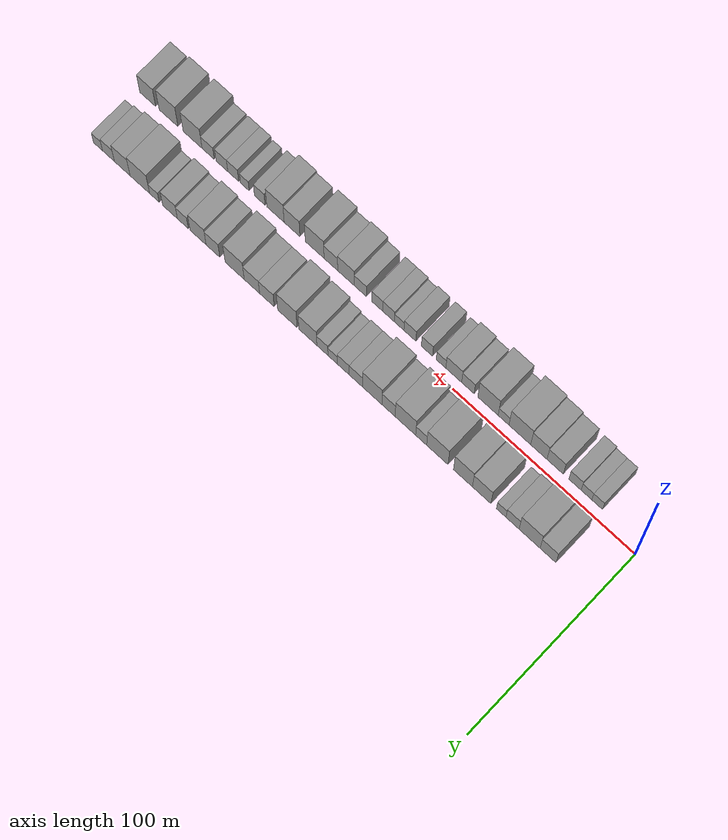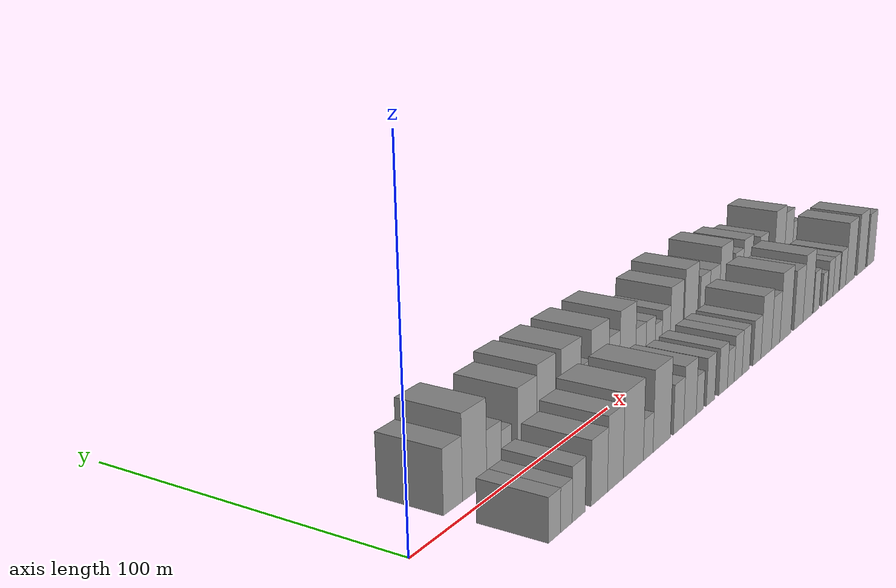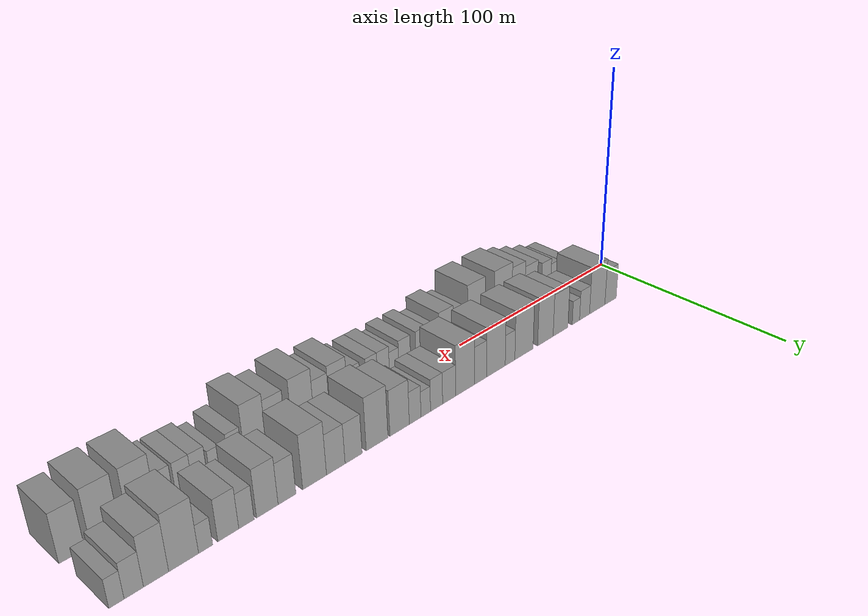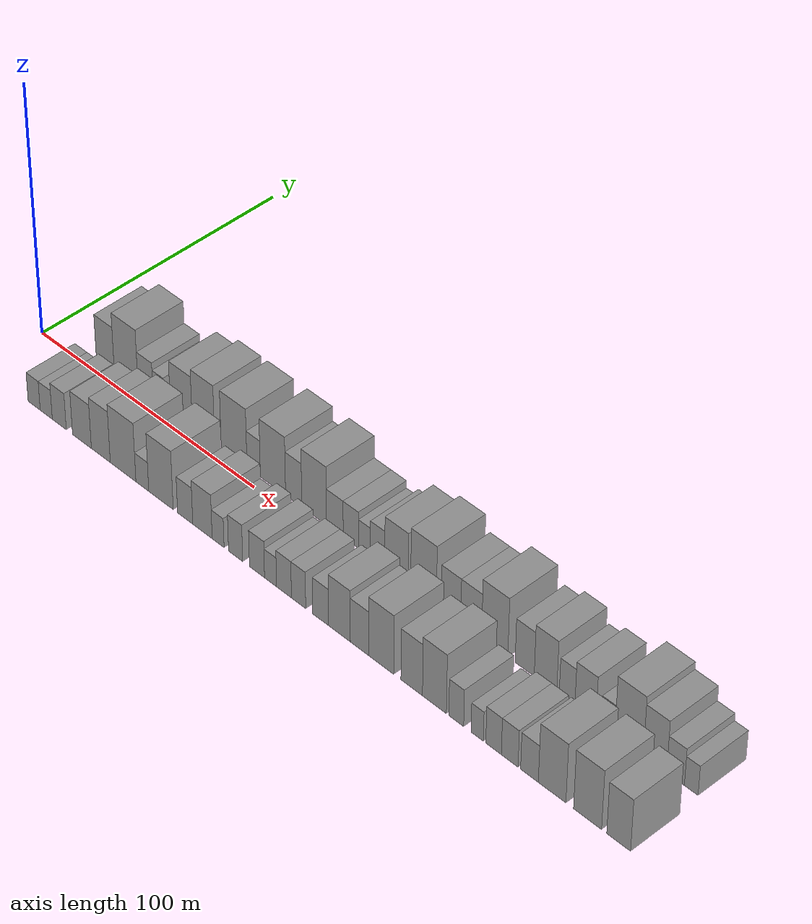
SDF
<sdf version="1.6">
 <world name="default">
  <scene>
   <sky><clouds><speed>12</speed></clouds></sky>
   <ambient>0.4 0.4 0.4 1</ambient>
   <background>0.7 0.7 0.7 1</background>
   <shadows>1</shadows>
  </scene>
  <gravity>0 0 -9.8066</gravity>
  <magnetic_field>6e-06 2.3e-05 -4.2e-05</magnetic_field>
  <physics default="0" name="default_physics" type="ode">
   <ode>
    <solver>
     <type>quick</type>
     <iters>10</iters>
     <sor>1.0</sor>
     <use_dynamic_moi_rescaling>0</use_dynamic_moi_rescaling>
    </solver>
    <constraints>
     <cfm>0</cfm>
     <erp>0.2</erp>
     <contact_max_correcting_vel>100</contact_max_correcting_vel>
     <contact_surface_layer>0.001</contact_surface_layer>
    </constraints>
   </ode>
   <max_step_size>0.004</max_step_size>
   <real_time_factor>1</real_time_factor>
   <real_time_update_rate>250</real_time_update_rate>
  </physics>
  <light name="sun" type="directional">
   <pose>0 0 10 0 0 0</pose>
   <diffuse>0.8 0.8 0.8 1</diffuse>
   <specular>0.2 0.2 0.2 1</specular>
   <attenuation>
    <range>1000</range>
    <constant>0.9</constant>
    <linear>0.01</linear>
    <quadratic>0.001</quadratic>
   </attenuation>
   <direction>-0.5 0.1 -0.9</direction>
  </light>
  <model name="building_1">
   <static>1</static>
   <pose>25.3235 14.5000 0 0.000000 0.000000 1.570796</pose>
   <link name="link">
    <pose>0 0 9.00 0 0 0</pose>
    <collision name="collision"><geometry><box><size>20.0000 8.6470 18.0000</size></box></geometry></collision>
    <visual name="visual">
     <cast_shadows>0</cast_shadows>
     <geometry><box><size>20.0000 8.6470 18.0000</size></box></geometry>
     <material>
      <script>
       <uri>model://grey_wall/materials/scripts</uri>
       <uri>model://grey_wall/materials/textures</uri>
       <name>vrc/grey_wall</name>
      </script>
     </material>
    </visual>
   </link>
  </model>
  <model name="building_2">
   <static>1</static>
   <pose>35.3446 14.5000 0 0.000000 0.000000 1.570796</pose>
   <link name="link">
    <pose>0 0 12.00 0 0 0</pose>
    <collision name="collision"><geometry><box><size>20.0000 11.3953 24.0000</size></box></geometry></collision>
    <visual name="visual">
     <cast_shadows>0</cast_shadows>
     <geometry><box><size>20.0000 11.3953 24.0000</size></box></geometry>
     <material>
      <script>
       <uri>model://grey_wall/materials/scripts</uri>
       <uri>model://grey_wall/materials/textures</uri>
       <name>vrc/grey_wall</name>
      </script>
     </material>
    </visual>
   </link>
  </model>
  <model name="building_3">
   <static>1</static>
   <pose>44.6455 14.5000 0 0.000000 0.000000 1.570796</pose>
   <link name="link">
    <pose>0 0 7.50 0 0 0</pose>
    <collision name="collision"><geometry><box><size>20.0000 7.2064 15.0000</size></box></geometry></collision>
    <visual name="visual">
     <cast_shadows>0</cast_shadows>
     <geometry><box><size>20.0000 7.2064 15.0000</size></box></geometry>
     <material>
      <script>
       <uri>model://grey_wall/materials/scripts</uri>
       <uri>model://grey_wall/materials/textures</uri>
       <name>vrc/grey_wall</name>
      </script>
     </material>
    </visual>
   </link>
  </model>
  <model name="building_4">
   <static>1</static>
   <pose>50.8558 14.5000 0 0.000000 0.000000 1.570796</pose>
   <link name="link">
    <pose>0 0 6.00 0 0 0</pose>
    <collision name="collision"><geometry><box><size>20.0000 5.2143 12.0000</size></box></geometry></collision>
    <visual name="visual">
     <cast_shadows>0</cast_shadows>
     <geometry><box><size>20.0000 5.2143 12.0000</size></box></geometry>
     <material>
      <script>
       <uri>model://grey_wall/materials/scripts</uri>
       <uri>model://grey_wall/materials/textures</uri>
       <name>vrc/grey_wall</name>
      </script>
     </material>
    </visual>
   </link>
  </model>
  <model name="building_5">
   <static>1</static>
   <pose>61.5639 14.5000 0 0.000000 0.000000 1.570796</pose>
   <link name="link">
    <pose>0 0 10.50 0 0 0</pose>
    <collision name="collision"><geometry><box><size>20.0000 10.2017 21.0000</size></box></geometry></collision>
    <visual name="visual">
     <cast_shadows>0</cast_shadows>
     <geometry><box><size>20.0000 10.2017 21.0000</size></box></geometry>
     <material>
      <script>
       <uri>model://grey_wall/materials/scripts</uri>
       <uri>model://grey_wall/materials/textures</uri>
       <name>vrc/grey_wall</name>
      </script>
     </material>
    </visual>
   </link>
  </model>
  <model name="building_6">
   <static>1</static>
   <pose>71.8635 14.5000 0 0.000000 0.000000 1.570796</pose>
   <link name="link">
    <pose>0 0 12.00 0 0 0</pose>
    <collision name="collision"><geometry><box><size>20.0000 10.3976 24.0000</size></box></geometry></collision>
    <visual name="visual">
     <cast_shadows>0</cast_shadows>
     <geometry><box><size>20.0000 10.3976 24.0000</size></box></geometry>
     <material>
      <script>
       <uri>model://grey_wall/materials/scripts</uri>
       <uri>model://grey_wall/materials/textures</uri>
       <name>vrc/grey_wall</name>
      </script>
     </material>
    </visual>
   </link>
  </model>
  <model name="building_7">
   <static>1</static>
   <pose>85.9538 14.5000 0 0.000000 0.000000 1.570796</pose>
   <link name="link">
    <pose>0 0 12.00 0 0 0</pose>
    <collision name="collision"><geometry><box><size>20.0000 11.7830 24.0000</size></box></geometry></collision>
    <visual name="visual">
     <cast_shadows>0</cast_shadows>
     <geometry><box><size>20.0000 11.7830 24.0000</size></box></geometry>
     <material>
      <script>
       <uri>model://grey_wall/materials/scripts</uri>
       <uri>model://grey_wall/materials/textures</uri>
       <name>vrc/grey_wall</name>
      </script>
     </material>
    </visual>
   </link>
  </model>
  <model name="building_8">
   <static>1</static>
   <pose>94.8876 14.5000 0 0.000000 0.000000 1.570796</pose>
   <link name="link">
    <pose>0 0 7.50 0 0 0</pose>
    <collision name="collision"><geometry><box><size>20.0000 6.0846 15.0000</size></box></geometry></collision>
    <visual name="visual">
     <cast_shadows>0</cast_shadows>
     <geometry><box><size>20.0000 6.0846 15.0000</size></box></geometry>
     <material>
      <script>
       <uri>model://grey_wall/materials/scripts</uri>
       <uri>model://grey_wall/materials/textures</uri>
       <name>vrc/grey_wall</name>
      </script>
     </material>
    </visual>
   </link>
  </model>
  <model name="building_9">
   <static>1</static>
   <pose>103.6214 14.5000 0 0.000000 0.000000 1.570796</pose>
   <link name="link">
    <pose>0 0 12.00 0 0 0</pose>
    <collision name="collision"><geometry><box><size>20.0000 11.3830 24.0000</size></box></geometry></collision>
    <visual name="visual">
     <cast_shadows>0</cast_shadows>
     <geometry><box><size>20.0000 11.3830 24.0000</size></box></geometry>
     <material>
      <script>
       <uri>model://grey_wall/materials/scripts</uri>
       <uri>model://grey_wall/materials/textures</uri>
       <name>vrc/grey_wall</name>
      </script>
     </material>
    </visual>
   </link>
  </model>
  <model name="building_10">
   <static>1</static>
   <pose>112.9402 14.5000 0 0.000000 0.000000 1.570796</pose>
   <link name="link">
    <pose>0 0 9.00 0 0 0</pose>
    <collision name="collision"><geometry><box><size>20.0000 7.2546 18.0000</size></box></geometry></collision>
    <visual name="visual">
     <cast_shadows>0</cast_shadows>
     <geometry><box><size>20.0000 7.2546 18.0000</size></box></geometry>
     <material>
      <script>
       <uri>model://grey_wall/materials/scripts</uri>
       <uri>model://grey_wall/materials/textures</uri>
       <name>vrc/grey_wall</name>
      </script>
     </material>
    </visual>
   </link>
  </model>
  <model name="building_11">
   <static>1</static>
   <pose>122.0571 14.5000 0 0.000000 0.000000 1.570796</pose>
   <link name="link">
    <pose>0 0 12.00 0 0 0</pose>
    <collision name="collision"><geometry><box><size>20.0000 10.9791 24.0000</size></box></geometry></collision>
    <visual name="visual">
     <cast_shadows>0</cast_shadows>
     <geometry><box><size>20.0000 10.9791 24.0000</size></box></geometry>
     <material>
      <script>
       <uri>model://grey_wall/materials/scripts</uri>
       <uri>model://grey_wall/materials/textures</uri>
       <name>vrc/grey_wall</name>
      </script>
     </material>
    </visual>
   </link>
  </model>
  <model name="building_12">
   <static>1</static>
   <pose>131.2327 14.5000 0 0.000000 0.000000 1.570796</pose>
   <link name="link">
    <pose>0 0 7.50 0 0 0</pose>
    <collision name="collision"><geometry><box><size>20.0000 7.3722 15.0000</size></box></geometry></collision>
    <visual name="visual">
     <cast_shadows>0</cast_shadows>
     <geometry><box><size>20.0000 7.3722 15.0000</size></box></geometry>
     <material>
      <script>
       <uri>model://grey_wall/materials/scripts</uri>
       <uri>model://grey_wall/materials/textures</uri>
       <name>vrc/grey_wall</name>
      </script>
     </material>
    </visual>
   </link>
  </model>
  <model name="building_13">
   <static>1</static>
   <pose>138.2727 14.5000 0 0.000000 0.000000 1.570796</pose>
   <link name="link">
    <pose>0 0 7.50 0 0 0</pose>
    <collision name="collision"><geometry><box><size>20.0000 6.7077 15.0000</size></box></geometry></collision>
    <visual name="visual">
     <cast_shadows>0</cast_shadows>
     <geometry><box><size>20.0000 6.7077 15.0000</size></box></geometry>
     <material>
      <script>
       <uri>model://grey_wall/materials/scripts</uri>
       <uri>model://grey_wall/materials/textures</uri>
       <name>vrc/grey_wall</name>
      </script>
     </material>
    </visual>
   </link>
  </model>
  <model name="building_14">
   <static>1</static>
   <pose>144.2247 14.5000 0 0.000000 0.000000 1.570796</pose>
   <link name="link">
    <pose>0 0 6.00 0 0 0</pose>
    <collision name="collision"><geometry><box><size>20.0000 5.1963 12.0000</size></box></geometry></collision>
    <visual name="visual">
     <cast_shadows>0</cast_shadows>
     <geometry><box><size>20.0000 5.1963 12.0000</size></box></geometry>
     <material>
      <script>
       <uri>model://grey_wall/materials/scripts</uri>
       <uri>model://grey_wall/materials/textures</uri>
       <name>vrc/grey_wall</name>
      </script>
     </material>
    </visual>
   </link>
  </model>
  <model name="building_15">
   <static>1</static>
   <pose>149.9397 14.5000 0 0.000000 0.000000 1.570796</pose>
   <link name="link">
    <pose>0 0 7.50 0 0 0</pose>
    <collision name="collision"><geometry><box><size>20.0000 6.2338 15.0000</size></box></geometry></collision>
    <visual name="visual">
     <cast_shadows>0</cast_shadows>
     <geometry><box><size>20.0000 6.2338 15.0000</size></box></geometry>
     <material>
      <script>
       <uri>model://grey_wall/materials/scripts</uri>
       <uri>model://grey_wall/materials/textures</uri>
       <name>vrc/grey_wall</name>
      </script>
     </material>
    </visual>
   </link>
  </model>
  <model name="building_16">
   <static>1</static>
   <pose>158.1114 14.5000 0 0.000000 0.000000 1.570796</pose>
   <link name="link">
    <pose>0 0 10.50 0 0 0</pose>
    <collision name="collision"><geometry><box><size>20.0000 10.1097 21.0000</size></box></geometry></collision>
    <visual name="visual">
     <cast_shadows>0</cast_shadows>
     <geometry><box><size>20.0000 10.1097 21.0000</size></box></geometry>
     <material>
      <script>
       <uri>model://grey_wall/materials/scripts</uri>
       <uri>model://grey_wall/materials/textures</uri>
       <name>vrc/grey_wall</name>
      </script>
     </material>
    </visual>
   </link>
  </model>
  <model name="building_17">
   <static>1</static>
   <pose>169.6307 14.5000 0 0.000000 0.000000 1.570796</pose>
   <link name="link">
    <pose>0 0 12.00 0 0 0</pose>
    <collision name="collision"><geometry><box><size>20.0000 10.9290 24.0000</size></box></geometry></collision>
    <visual name="visual">
     <cast_shadows>0</cast_shadows>
     <geometry><box><size>20.0000 10.9290 24.0000</size></box></geometry>
     <material>
      <script>
       <uri>model://grey_wall/materials/scripts</uri>
       <uri>model://grey_wall/materials/textures</uri>
       <name>vrc/grey_wall</name>
      </script>
     </material>
    </visual>
   </link>
  </model>
  <model name="building_18">
   <static>1</static>
   <pose>181.2219 14.5000 0 0.000000 0.000000 1.570796</pose>
   <link name="link">
    <pose>0 0 9.00 0 0 0</pose>
    <collision name="collision"><geometry><box><size>20.0000 8.2533 18.0000</size></box></geometry></collision>
    <visual name="visual">
     <cast_shadows>0</cast_shadows>
     <geometry><box><size>20.0000 8.2533 18.0000</size></box></geometry>
     <material>
      <script>
       <uri>model://grey_wall/materials/scripts</uri>
       <uri>model://grey_wall/materials/textures</uri>
       <name>vrc/grey_wall</name>
      </script>
     </material>
    </visual>
   </link>
  </model>
  <model name="building_19">
   <static>1</static>
   <pose>189.7160 14.5000 0 0.000000 0.000000 1.570796</pose>
   <link name="link">
    <pose>0 0 9.00 0 0 0</pose>
    <collision name="collision"><geometry><box><size>20.0000 8.7350 18.0000</size></box></geometry></collision>
    <visual name="visual">
     <cast_shadows>0</cast_shadows>
     <geometry><box><size>20.0000 8.7350 18.0000</size></box></geometry>
     <material>
      <script>
       <uri>model://grey_wall/materials/scripts</uri>
       <uri>model://grey_wall/materials/textures</uri>
       <name>vrc/grey_wall</name>
      </script>
     </material>
    </visual>
   </link>
  </model>
  <model name="building_20">
   <static>1</static>
   <pose>199.5120 14.5000 0 0.000000 0.000000 1.570796</pose>
   <link name="link">
    <pose>0 0 12.00 0 0 0</pose>
    <collision name="collision"><geometry><box><size>20.0000 10.8571 24.0000</size></box></geometry></collision>
    <visual name="visual">
     <cast_shadows>0</cast_shadows>
     <geometry><box><size>20.0000 10.8571 24.0000</size></box></geometry>
     <material>
      <script>
       <uri>model://grey_wall/materials/scripts</uri>
       <uri>model://grey_wall/materials/textures</uri>
       <name>vrc/grey_wall</name>
      </script>
     </material>
    </visual>
   </link>
  </model>
  <model name="building_21">
   <static>1</static>
   <pose>211.8389 14.5000 0 0.000000 0.000000 1.570796</pose>
   <link name="link">
    <pose>0 0 9.00 0 0 0</pose>
    <collision name="collision"><geometry><box><size>20.0000 7.7967 18.0000</size></box></geometry></collision>
    <visual name="visual">
     <cast_shadows>0</cast_shadows>
     <geometry><box><size>20.0000 7.7967 18.0000</size></box></geometry>
     <material>
      <script>
       <uri>model://grey_wall/materials/scripts</uri>
       <uri>model://grey_wall/materials/textures</uri>
       <name>vrc/grey_wall</name>
      </script>
     </material>
    </visual>
   </link>
  </model>
  <model name="building_22">
   <static>1</static>
   <pose>220.3157 14.5000 0 0.000000 0.000000 1.570796</pose>
   <link name="link">
    <pose>0 0 10.50 0 0 0</pose>
    <collision name="collision"><geometry><box><size>20.0000 9.1568 21.0000</size></box></geometry></collision>
    <visual name="visual">
     <cast_shadows>0</cast_shadows>
     <geometry><box><size>20.0000 9.1568 21.0000</size></box></geometry>
     <material>
      <script>
       <uri>model://grey_wall/materials/scripts</uri>
       <uri>model://grey_wall/materials/textures</uri>
       <name>vrc/grey_wall</name>
      </script>
     </material>
    </visual>
   </link>
  </model>
  <model name="building_23">
   <static>1</static>
   <pose>229.0466 14.5000 0 0.000000 0.000000 1.570796</pose>
   <link name="link">
    <pose>0 0 7.50 0 0 0</pose>
    <collision name="collision"><geometry><box><size>20.0000 6.3051 15.0000</size></box></geometry></collision>
    <visual name="visual">
     <cast_shadows>0</cast_shadows>
     <geometry><box><size>20.0000 6.3051 15.0000</size></box></geometry>
     <material>
      <script>
       <uri>model://grey_wall/materials/scripts</uri>
       <uri>model://grey_wall/materials/textures</uri>
       <name>vrc/grey_wall</name>
      </script>
     </material>
    </visual>
   </link>
  </model>
  <model name="building_24">
   <static>1</static>
   <pose>236.4093 14.5000 0 0.000000 0.000000 1.570796</pose>
   <link name="link">
    <pose>0 0 9.00 0 0 0</pose>
    <collision name="collision"><geometry><box><size>20.0000 8.4203 18.0000</size></box></geometry></collision>
    <visual name="visual">
     <cast_shadows>0</cast_shadows>
     <geometry><box><size>20.0000 8.4203 18.0000</size></box></geometry>
     <material>
      <script>
       <uri>model://grey_wall/materials/scripts</uri>
       <uri>model://grey_wall/materials/textures</uri>
       <name>vrc/grey_wall</name>
      </script>
     </material>
    </visual>
   </link>
  </model>
  <model name="building_25">
   <static>1</static>
   <pose>245.3656 14.5000 0 0.000000 0.000000 1.570796</pose>
   <link name="link">
    <pose>0 0 6.00 0 0 0</pose>
    <collision name="collision"><geometry><box><size>20.0000 5.4925 12.0000</size></box></geometry></collision>
    <visual name="visual">
     <cast_shadows>0</cast_shadows>
     <geometry><box><size>20.0000 5.4925 12.0000</size></box></geometry>
     <material>
      <script>
       <uri>model://grey_wall/materials/scripts</uri>
       <uri>model://grey_wall/materials/textures</uri>
       <name>vrc/grey_wall</name>
      </script>
     </material>
    </visual>
   </link>
  </model>
  <model name="building_26">
   <static>1</static>
   <pose>253.7305 14.5000 0 0.000000 0.000000 1.570796</pose>
   <link name="link">
    <pose>0 0 12.00 0 0 0</pose>
    <collision name="collision"><geometry><box><size>20.0000 11.2373 24.0000</size></box></geometry></collision>
    <visual name="visual">
     <cast_shadows>0</cast_shadows>
     <geometry><box><size>20.0000 11.2373 24.0000</size></box></geometry>
     <material>
      <script>
       <uri>model://grey_wall/materials/scripts</uri>
       <uri>model://grey_wall/materials/textures</uri>
       <name>vrc/grey_wall</name>
      </script>
     </material>
    </visual>
   </link>
  </model>
  <model name="building_27">
   <static>1</static>
   <pose>263.9047 14.5000 0 0.000000 0.000000 1.570796</pose>
   <link name="link">
    <pose>0 0 10.50 0 0 0</pose>
    <collision name="collision"><geometry><box><size>20.0000 9.1110 21.0000</size></box></geometry></collision>
    <visual name="visual">
     <cast_shadows>0</cast_shadows>
     <geometry><box><size>20.0000 9.1110 21.0000</size></box></geometry>
     <material>
      <script>
       <uri>model://grey_wall/materials/scripts</uri>
       <uri>model://grey_wall/materials/textures</uri>
       <name>vrc/grey_wall</name>
      </script>
     </material>
    </visual>
   </link>
  </model>
  <model name="building_28">
   <static>1</static>
   <pose>271.8856 14.5000 0 0.000000 0.000000 1.570796</pose>
   <link name="link">
    <pose>0 0 7.50 0 0 0</pose>
    <collision name="collision"><geometry><box><size>20.0000 6.8509 15.0000</size></box></geometry></collision>
    <visual name="visual">
     <cast_shadows>0</cast_shadows>
     <geometry><box><size>20.0000 6.8509 15.0000</size></box></geometry>
     <material>
      <script>
       <uri>model://grey_wall/materials/scripts</uri>
       <uri>model://grey_wall/materials/textures</uri>
       <name>vrc/grey_wall</name>
      </script>
     </material>
    </visual>
   </link>
  </model>
  <model name="building_29">
   <static>1</static>
   <pose>277.9489 14.5000 0 0.000000 0.000000 1.570796</pose>
   <link name="link">
    <pose>0 0 6.00 0 0 0</pose>
    <collision name="collision"><geometry><box><size>20.0000 5.2755 12.0000</size></box></geometry></collision>
    <visual name="visual">
     <cast_shadows>0</cast_shadows>
     <geometry><box><size>20.0000 5.2755 12.0000</size></box></geometry>
     <material>
      <script>
       <uri>model://grey_wall/materials/scripts</uri>
       <uri>model://grey_wall/materials/textures</uri>
       <name>vrc/grey_wall</name>
      </script>
     </material>
    </visual>
   </link>
  </model>
  <model name="building_30">
   <static>1</static>
   <pose>24.9057 -14.5000 0 0.000000 0.000000 1.570796</pose>
   <link name="link">
    <pose>0 0 6.00 0 0 0</pose>
    <collision name="collision"><geometry><box><size>20.0000 5.8114 12.0000</size></box></geometry></collision>
    <visual name="visual">
     <cast_shadows>0</cast_shadows>
     <geometry><box><size>20.0000 5.8114 12.0000</size></box></geometry>
     <material>
      <script>
       <uri>model://grey_wall/materials/scripts</uri>
       <uri>model://grey_wall/materials/textures</uri>
       <name>vrc/grey_wall</name>
      </script>
     </material>
    </visual>
   </link>
  </model>
  <model name="building_31">
   <static>1</static>
   <pose>30.7240 -14.5000 0 0.000000 0.000000 1.570796</pose>
   <link name="link">
    <pose>0 0 6.00 0 0 0</pose>
    <collision name="collision"><geometry><box><size>20.0000 5.8250 12.0000</size></box></geometry></collision>
    <visual name="visual">
     <cast_shadows>0</cast_shadows>
     <geometry><box><size>20.0000 5.8250 12.0000</size></box></geometry>
     <material>
      <script>
       <uri>model://grey_wall/materials/scripts</uri>
       <uri>model://grey_wall/materials/textures</uri>
       <name>vrc/grey_wall</name>
      </script>
     </material>
    </visual>
   </link>
  </model>
  <model name="building_32">
   <static>1</static>
   <pose>36.9973 -14.5000 0 0.000000 0.000000 1.570796</pose>
   <link name="link">
    <pose>0 0 7.50 0 0 0</pose>
    <collision name="collision"><geometry><box><size>20.0000 6.7216 15.0000</size></box></geometry></collision>
    <visual name="visual">
     <cast_shadows>0</cast_shadows>
     <geometry><box><size>20.0000 6.7216 15.0000</size></box></geometry>
     <material>
      <script>
       <uri>model://grey_wall/materials/scripts</uri>
       <uri>model://grey_wall/materials/textures</uri>
       <name>vrc/grey_wall</name>
      </script>
     </material>
    </visual>
   </link>
  </model>
  <model name="building_33">
   <static>1</static>
   <pose>47.8279 -14.5000 0 0.000000 0.000000 1.570796</pose>
   <link name="link">
    <pose>0 0 9.00 0 0 0</pose>
    <collision name="collision"><geometry><box><size>20.0000 8.9396 18.0000</size></box></geometry></collision>
    <visual name="visual">
     <cast_shadows>0</cast_shadows>
     <geometry><box><size>20.0000 8.9396 18.0000</size></box></geometry>
     <material>
      <script>
       <uri>model://grey_wall/materials/scripts</uri>
       <uri>model://grey_wall/materials/textures</uri>
       <name>vrc/grey_wall</name>
      </script>
     </material>
    </visual>
   </link>
  </model>
  <model name="building_34">
   <static>1</static>
   <pose>56.7555 -14.5000 0 0.000000 0.000000 1.570796</pose>
   <link name="link">
    <pose>0 0 10.50 0 0 0</pose>
    <collision name="collision"><geometry><box><size>20.0000 8.9155 21.0000</size></box></geometry></collision>
    <visual name="visual">
     <cast_shadows>0</cast_shadows>
     <geometry><box><size>20.0000 8.9155 21.0000</size></box></geometry>
     <material>
      <script>
       <uri>model://grey_wall/materials/scripts</uri>
       <uri>model://grey_wall/materials/textures</uri>
       <name>vrc/grey_wall</name>
      </script>
     </material>
    </visual>
   </link>
  </model>
  <model name="building_35">
   <static>1</static>
   <pose>67.2008 -14.5000 0 0.000000 0.000000 1.570796</pose>
   <link name="link">
    <pose>0 0 12.00 0 0 0</pose>
    <collision name="collision"><geometry><box><size>20.0000 11.9750 24.0000</size></box></geometry></collision>
    <visual name="visual">
     <cast_shadows>0</cast_shadows>
     <geometry><box><size>20.0000 11.9750 24.0000</size></box></geometry>
     <material>
      <script>
       <uri>model://grey_wall/materials/scripts</uri>
       <uri>model://grey_wall/materials/textures</uri>
       <name>vrc/grey_wall</name>
      </script>
     </material>
    </visual>
   </link>
  </model>
  <model name="building_36">
   <static>1</static>
   <pose>76.1586 -14.5000 0 0.000000 0.000000 1.570796</pose>
   <link name="link">
    <pose>0 0 6.00 0 0 0</pose>
    <collision name="collision"><geometry><box><size>20.0000 5.9405 12.0000</size></box></geometry></collision>
    <visual name="visual">
     <cast_shadows>0</cast_shadows>
     <geometry><box><size>20.0000 5.9405 12.0000</size></box></geometry>
     <material>
      <script>
       <uri>model://grey_wall/materials/scripts</uri>
       <uri>model://grey_wall/materials/textures</uri>
       <name>vrc/grey_wall</name>
      </script>
     </material>
    </visual>
   </link>
  </model>
  <model name="building_37">
   <static>1</static>
   <pose>84.7532 -14.5000 0 0.000000 0.000000 1.570796</pose>
   <link name="link">
    <pose>0 0 12.00 0 0 0</pose>
    <collision name="collision"><geometry><box><size>20.0000 11.2487 24.0000</size></box></geometry></collision>
    <visual name="visual">
     <cast_shadows>0</cast_shadows>
     <geometry><box><size>20.0000 11.2487 24.0000</size></box></geometry>
     <material>
      <script>
       <uri>model://grey_wall/materials/scripts</uri>
       <uri>model://grey_wall/materials/textures</uri>
       <name>vrc/grey_wall</name>
      </script>
     </material>
    </visual>
   </link>
  </model>
  <model name="building_38">
   <static>1</static>
   <pose>95.8421 -14.5000 0 0.000000 0.000000 1.570796</pose>
   <link name="link">
    <pose>0 0 7.50 0 0 0</pose>
    <collision name="collision"><geometry><box><size>20.0000 6.9291 15.0000</size></box></geometry></collision>
    <visual name="visual">
     <cast_shadows>0</cast_shadows>
     <geometry><box><size>20.0000 6.9291 15.0000</size></box></geometry>
     <material>
      <script>
       <uri>model://grey_wall/materials/scripts</uri>
       <uri>model://grey_wall/materials/textures</uri>
       <name>vrc/grey_wall</name>
      </script>
     </material>
    </visual>
   </link>
  </model>
  <model name="building_39">
   <static>1</static>
   <pose>103.6847 -14.5000 0 0.000000 0.000000 1.570796</pose>
   <link name="link">
    <pose>0 0 9.00 0 0 0</pose>
    <collision name="collision"><geometry><box><size>20.0000 8.7561 18.0000</size></box></geometry></collision>
    <visual name="visual">
     <cast_shadows>0</cast_shadows>
     <geometry><box><size>20.0000 8.7561 18.0000</size></box></geometry>
     <material>
      <script>
       <uri>model://grey_wall/materials/scripts</uri>
       <uri>model://grey_wall/materials/textures</uri>
       <name>vrc/grey_wall</name>
      </script>
     </material>
    </visual>
   </link>
  </model>
  <model name="building_40">
   <static>1</static>
   <pose>110.7421 -14.5000 0 0.000000 0.000000 1.570796</pose>
   <link name="link">
    <pose>0 0 6.00 0 0 0</pose>
    <collision name="collision"><geometry><box><size>20.0000 5.3586 12.0000</size></box></geometry></collision>
    <visual name="visual">
     <cast_shadows>0</cast_shadows>
     <geometry><box><size>20.0000 5.3586 12.0000</size></box></geometry>
     <material>
      <script>
       <uri>model://grey_wall/materials/scripts</uri>
       <uri>model://grey_wall/materials/textures</uri>
       <name>vrc/grey_wall</name>
      </script>
     </material>
    </visual>
   </link>
  </model>
  <model name="building_41">
   <static>1</static>
   <pose>118.5810 -14.5000 0 0.000000 0.000000 1.570796</pose>
   <link name="link">
    <pose>0 0 7.50 0 0 0</pose>
    <collision name="collision"><geometry><box><size>20.0000 6.3191 15.0000</size></box></geometry></collision>
    <visual name="visual">
     <cast_shadows>0</cast_shadows>
     <geometry><box><size>20.0000 6.3191 15.0000</size></box></geometry>
     <material>
      <script>
       <uri>model://grey_wall/materials/scripts</uri>
       <uri>model://grey_wall/materials/textures</uri>
       <name>vrc/grey_wall</name>
      </script>
     </material>
    </visual>
   </link>
  </model>
  <model name="building_42">
   <static>1</static>
   <pose>128.0762 -14.5000 0 0.000000 0.000000 1.570796</pose>
   <link name="link">
    <pose>0 0 7.50 0 0 0</pose>
    <collision name="collision"><geometry><box><size>20.0000 6.6713 15.0000</size></box></geometry></collision>
    <visual name="visual">
     <cast_shadows>0</cast_shadows>
     <geometry><box><size>20.0000 6.6713 15.0000</size></box></geometry>
     <material>
      <script>
       <uri>model://grey_wall/materials/scripts</uri>
       <uri>model://grey_wall/materials/textures</uri>
       <name>vrc/grey_wall</name>
      </script>
     </material>
    </visual>
   </link>
  </model>
  <model name="building_43">
   <static>1</static>
   <pose>134.0583 -14.5000 0 0.000000 0.000000 1.570796</pose>
   <link name="link">
    <pose>0 0 6.00 0 0 0</pose>
    <collision name="collision"><geometry><box><size>20.0000 5.2930 12.0000</size></box></geometry></collision>
    <visual name="visual">
     <cast_shadows>0</cast_shadows>
     <geometry><box><size>20.0000 5.2930 12.0000</size></box></geometry>
     <material>
      <script>
       <uri>model://grey_wall/materials/scripts</uri>
       <uri>model://grey_wall/materials/textures</uri>
       <name>vrc/grey_wall</name>
      </script>
     </material>
    </visual>
   </link>
  </model>
  <model name="building_44">
   <static>1</static>
   <pose>139.9572 -14.5000 0 0.000000 0.000000 1.570796</pose>
   <link name="link">
    <pose>0 0 7.50 0 0 0</pose>
    <collision name="collision"><geometry><box><size>20.0000 6.5048 15.0000</size></box></geometry></collision>
    <visual name="visual">
     <cast_shadows>0</cast_shadows>
     <geometry><box><size>20.0000 6.5048 15.0000</size></box></geometry>
     <material>
      <script>
       <uri>model://grey_wall/materials/scripts</uri>
       <uri>model://grey_wall/materials/textures</uri>
       <name>vrc/grey_wall</name>
      </script>
     </material>
    </visual>
   </link>
  </model>
  <model name="building_45">
   <static>1</static>
   <pose>146.3223 -14.5000 0 0.000000 0.000000 1.570796</pose>
   <link name="link">
    <pose>0 0 7.50 0 0 0</pose>
    <collision name="collision"><geometry><box><size>20.0000 6.2253 15.0000</size></box></geometry></collision>
    <visual name="visual">
     <cast_shadows>0</cast_shadows>
     <geometry><box><size>20.0000 6.2253 15.0000</size></box></geometry>
     <material>
      <script>
       <uri>model://grey_wall/materials/scripts</uri>
       <uri>model://grey_wall/materials/textures</uri>
       <name>vrc/grey_wall</name>
      </script>
     </material>
    </visual>
   </link>
  </model>
  <model name="building_46">
   <static>1</static>
   <pose>155.8530 -14.5000 0 0.000000 0.000000 1.570796</pose>
   <link name="link">
    <pose>0 0 7.50 0 0 0</pose>
    <collision name="collision"><geometry><box><size>20.0000 6.8361 15.0000</size></box></geometry></collision>
    <visual name="visual">
     <cast_shadows>0</cast_shadows>
     <geometry><box><size>20.0000 6.8361 15.0000</size></box></geometry>
     <material>
      <script>
       <uri>model://grey_wall/materials/scripts</uri>
       <uri>model://grey_wall/materials/textures</uri>
       <name>vrc/grey_wall</name>
      </script>
     </material>
    </visual>
   </link>
  </model>
  <model name="building_47">
   <static>1</static>
   <pose>163.9520 -14.5000 0 0.000000 0.000000 1.570796</pose>
   <link name="link">
    <pose>0 0 10.50 0 0 0</pose>
    <collision name="collision"><geometry><box><size>20.0000 9.3619 21.0000</size></box></geometry></collision>
    <visual name="visual">
     <cast_shadows>0</cast_shadows>
     <geometry><box><size>20.0000 9.3619 21.0000</size></box></geometry>
     <material>
      <script>
       <uri>model://grey_wall/materials/scripts</uri>
       <uri>model://grey_wall/materials/textures</uri>
       <name>vrc/grey_wall</name>
      </script>
     </material>
    </visual>
   </link>
  </model>
  <model name="building_48">
   <static>1</static>
   <pose>172.4879 -14.5000 0 0.000000 0.000000 1.570796</pose>
   <link name="link">
    <pose>0 0 9.00 0 0 0</pose>
    <collision name="collision"><geometry><box><size>20.0000 7.7100 18.0000</size></box></geometry></collision>
    <visual name="visual">
     <cast_shadows>0</cast_shadows>
     <geometry><box><size>20.0000 7.7100 18.0000</size></box></geometry>
     <material>
      <script>
       <uri>model://grey_wall/materials/scripts</uri>
       <uri>model://grey_wall/materials/textures</uri>
       <name>vrc/grey_wall</name>
      </script>
     </material>
    </visual>
   </link>
  </model>
  <model name="building_49">
   <static>1</static>
   <pose>181.6602 -14.5000 0 0.000000 0.000000 1.570796</pose>
   <link name="link">
    <pose>0 0 12.00 0 0 0</pose>
    <collision name="collision"><geometry><box><size>20.0000 10.6346 24.0000</size></box></geometry></collision>
    <visual name="visual">
     <cast_shadows>0</cast_shadows>
     <geometry><box><size>20.0000 10.6346 24.0000</size></box></geometry>
     <material>
      <script>
       <uri>model://grey_wall/materials/scripts</uri>
       <uri>model://grey_wall/materials/textures</uri>
       <name>vrc/grey_wall</name>
      </script>
     </material>
    </visual>
   </link>
  </model>
  <model name="building_50">
   <static>1</static>
   <pose>194.4681 -14.5000 0 0.000000 0.000000 1.570796</pose>
   <link name="link">
    <pose>0 0 10.50 0 0 0</pose>
    <collision name="collision"><geometry><box><size>20.0000 8.9810 21.0000</size></box></geometry></collision>
    <visual name="visual">
     <cast_shadows>0</cast_shadows>
     <geometry><box><size>20.0000 8.9810 21.0000</size></box></geometry>
     <material>
      <script>
       <uri>model://grey_wall/materials/scripts</uri>
       <uri>model://grey_wall/materials/textures</uri>
       <name>vrc/grey_wall</name>
      </script>
     </material>
    </visual>
   </link>
  </model>
  <model name="building_51">
   <static>1</static>
   <pose>203.8892 -14.5000 0 0.000000 0.000000 1.570796</pose>
   <link name="link">
    <pose>0 0 12.00 0 0 0</pose>
    <collision name="collision"><geometry><box><size>20.0000 9.8612 24.0000</size></box></geometry></collision>
    <visual name="visual">
     <cast_shadows>0</cast_shadows>
     <geometry><box><size>20.0000 9.8612 24.0000</size></box></geometry>
     <material>
      <script>
       <uri>model://grey_wall/materials/scripts</uri>
       <uri>model://grey_wall/materials/textures</uri>
       <name>vrc/grey_wall</name>
      </script>
     </material>
    </visual>
   </link>
  </model>
  <model name="building_52">
   <static>1</static>
   <pose>212.8627 -14.5000 0 0.000000 0.000000 1.570796</pose>
   <link name="link">
    <pose>0 0 7.50 0 0 0</pose>
    <collision name="collision"><geometry><box><size>20.0000 6.0858 15.0000</size></box></geometry></collision>
    <visual name="visual">
     <cast_shadows>0</cast_shadows>
     <geometry><box><size>20.0000 6.0858 15.0000</size></box></geometry>
     <material>
      <script>
       <uri>model://grey_wall/materials/scripts</uri>
       <uri>model://grey_wall/materials/textures</uri>
       <name>vrc/grey_wall</name>
      </script>
     </material>
    </visual>
   </link>
  </model>
  <model name="building_53">
   <static>1</static>
   <pose>221.3942 -14.5000 0 0.000000 0.000000 1.570796</pose>
   <link name="link">
    <pose>0 0 6.00 0 0 0</pose>
    <collision name="collision"><geometry><box><size>20.0000 4.9773 12.0000</size></box></geometry></collision>
    <visual name="visual">
     <cast_shadows>0</cast_shadows>
     <geometry><box><size>20.0000 4.9773 12.0000</size></box></geometry>
     <material>
      <script>
       <uri>model://grey_wall/materials/scripts</uri>
       <uri>model://grey_wall/materials/textures</uri>
       <name>vrc/grey_wall</name>
      </script>
     </material>
    </visual>
   </link>
  </model>
  <model name="building_54">
   <static>1</static>
   <pose>228.0225 -14.5000 0 0.000000 0.000000 1.570796</pose>
   <link name="link">
    <pose>0 0 7.50 0 0 0</pose>
    <collision name="collision"><geometry><box><size>20.0000 6.2794 15.0000</size></box></geometry></collision>
    <visual name="visual">
     <cast_shadows>0</cast_shadows>
     <geometry><box><size>20.0000 6.2794 15.0000</size></box></geometry>
     <material>
      <script>
       <uri>model://grey_wall/materials/scripts</uri>
       <uri>model://grey_wall/materials/textures</uri>
       <name>vrc/grey_wall</name>
      </script>
     </material>
    </visual>
   </link>
  </model>
  <model name="building_55">
   <static>1</static>
   <pose>234.5255 -14.5000 0 0.000000 0.000000 1.570796</pose>
   <link name="link">
    <pose>0 0 7.50 0 0 0</pose>
    <collision name="collision"><geometry><box><size>20.0000 6.7266 15.0000</size></box></geometry></collision>
    <visual name="visual">
     <cast_shadows>0</cast_shadows>
     <geometry><box><size>20.0000 6.7266 15.0000</size></box></geometry>
     <material>
      <script>
       <uri>model://grey_wall/materials/scripts</uri>
       <uri>model://grey_wall/materials/textures</uri>
       <name>vrc/grey_wall</name>
      </script>
     </material>
    </visual>
   </link>
  </model>
  <model name="building_56">
   <static>1</static>
   <pose>242.4114 -14.5000 0 0.000000 0.000000 1.570796</pose>
   <link name="link">
    <pose>0 0 7.50 0 0 0</pose>
    <collision name="collision"><geometry><box><size>20.0000 7.0451 15.0000</size></box></geometry></collision>
    <visual name="visual">
     <cast_shadows>0</cast_shadows>
     <geometry><box><size>20.0000 7.0451 15.0000</size></box></geometry>
     <material>
      <script>
       <uri>model://grey_wall/materials/scripts</uri>
       <uri>model://grey_wall/materials/textures</uri>
       <name>vrc/grey_wall</name>
      </script>
     </material>
    </visual>
   </link>
  </model>
  <model name="building_57">
   <static>1</static>
   <pose>251.3777 -14.5000 0 0.000000 0.000000 1.570796</pose>
   <link name="link">
    <pose>0 0 12.00 0 0 0</pose>
    <collision name="collision"><geometry><box><size>20.0000 10.8875 24.0000</size></box></geometry></collision>
    <visual name="visual">
     <cast_shadows>0</cast_shadows>
     <geometry><box><size>20.0000 10.8875 24.0000</size></box></geometry>
     <material>
      <script>
       <uri>model://grey_wall/materials/scripts</uri>
       <uri>model://grey_wall/materials/textures</uri>
       <name>vrc/grey_wall</name>
      </script>
     </material>
    </visual>
   </link>
  </model>
  <model name="building_58">
   <static>1</static>
   <pose>265.2764 -14.5000 0 0.000000 0.000000 1.570796</pose>
   <link name="link">
    <pose>0 0 12.00 0 0 0</pose>
    <collision name="collision"><geometry><box><size>20.0000 10.9101 24.0000</size></box></geometry></collision>
    <visual name="visual">
     <cast_shadows>0</cast_shadows>
     <geometry><box><size>20.0000 10.9101 24.0000</size></box></geometry>
     <material>
      <script>
       <uri>model://grey_wall/materials/scripts</uri>
       <uri>model://grey_wall/materials/textures</uri>
       <name>vrc/grey_wall</name>
      </script>
     </material>
    </visual>
   </link>
  </model>
  <model name="building_59">
   <static>1</static>
   <pose>277.3226 -14.5000 0 0.000000 0.000000 1.570796</pose>
   <link name="link">
    <pose>0 0 10.50 0 0 0</pose>
    <collision name="collision"><geometry><box><size>20.0000 9.1823 21.0000</size></box></geometry></collision>
    <visual name="visual">
     <cast_shadows>0</cast_shadows>
     <geometry><box><size>20.0000 9.1823 21.0000</size></box></geometry>
     <material>
      <script>
       <uri>model://grey_wall/materials/scripts</uri>
       <uri>model://grey_wall/materials/textures</uri>
       <name>vrc/grey_wall</name>
      </script>
     </material>
    </visual>
   </link>
  </model>
 </world>
</sdf>
